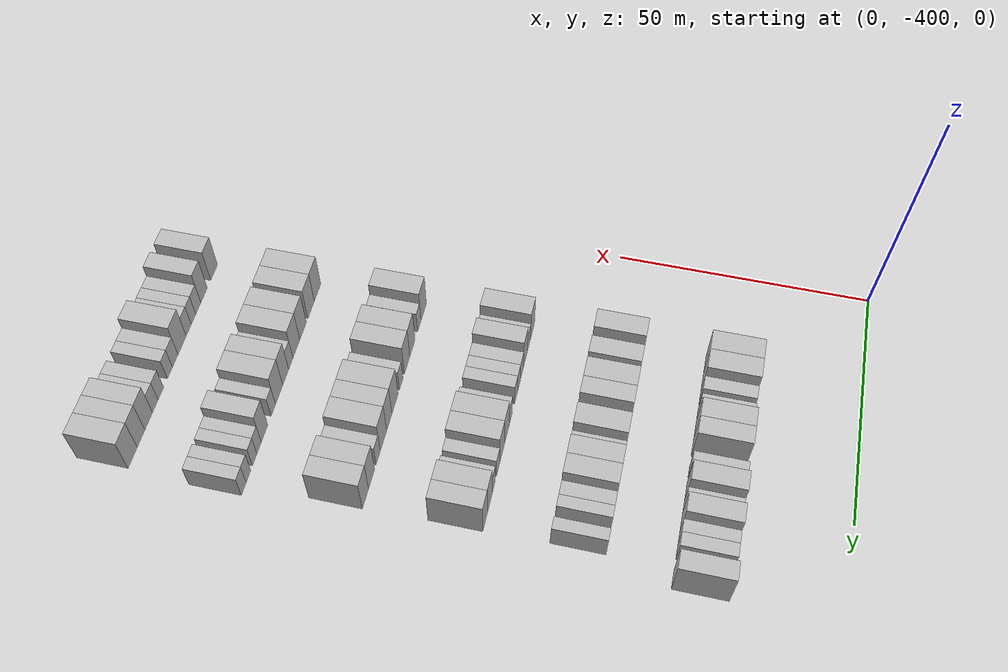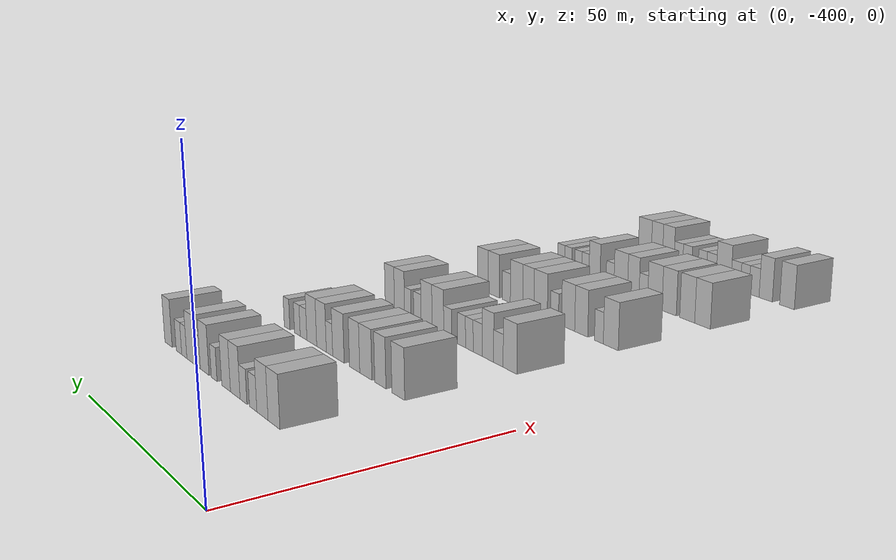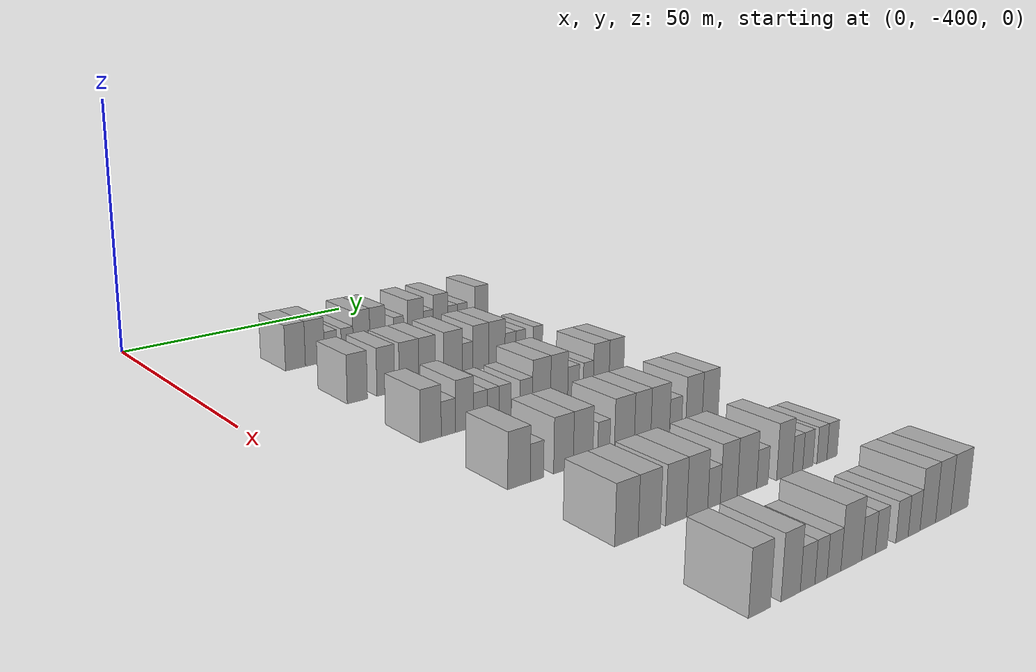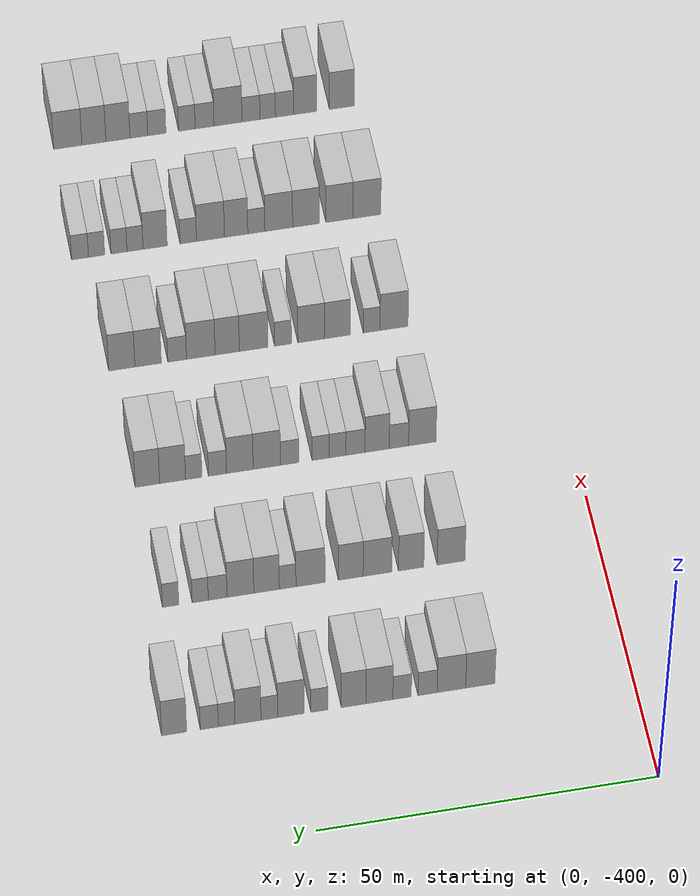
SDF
<sdf version="1.6">
 <world name="default">
  <model name="building_1">
   <static>1</static>
   <pose>25.0000 -377.8522 0 0.000000 0.000000 0.000000</pose>
   <link name="link">
    <pose>0 0 4.50 0 0 0</pose>
    <collision name="collision"><geometry><box><size>10.0000 4.2957 9.0000</size></box></geometry></collision>
    <visual name="visual">
     <cast_shadows>0</cast_shadows>
     <geometry><box><size>10.0000 4.2957 9.0000</size></box></geometry>
     <material>
      <script>
       <uri>model://HANNAS_wall/materials/scripts</uri>
       <uri>model://HANNAS_wall/materials/textures</uri>
       <name>vrc/HANNAS_wall</name>
      </script>
     </material>
    </visual>
   </link>
  </model>
  <model name="building_2">
   <static>1</static>
   <pose>25.0000 -373.5972 0 0.000000 0.000000 0.000000</pose>
   <link name="link">
    <pose>0 0 4.50 0 0 0</pose>
    <collision name="collision"><geometry><box><size>10.0000 4.2143 9.0000</size></box></geometry></collision>
    <visual name="visual">
     <cast_shadows>0</cast_shadows>
     <geometry><box><size>10.0000 4.2143 9.0000</size></box></geometry>
     <material>
      <script>
       <uri>model://HANNAS_wall/materials/scripts</uri>
       <uri>model://HANNAS_wall/materials/textures</uri>
       <name>vrc/HANNAS_wall</name>
      </script>
     </material>
    </visual>
   </link>
  </model>
  <model name="building_3">
   <static>1</static>
   <pose>25.0000 -370.0672 0 0.000000 0.000000 0.000000</pose>
   <link name="link">
    <pose>0 0 3.00 0 0 0</pose>
    <collision name="collision"><geometry><box><size>10.0000 2.8457 6.0000</size></box></geometry></collision>
    <visual name="visual">
     <cast_shadows>0</cast_shadows>
     <geometry><box><size>10.0000 2.8457 6.0000</size></box></geometry>
     <material>
      <script>
       <uri>model://HANNAS_wall/materials/scripts</uri>
       <uri>model://HANNAS_wall/materials/textures</uri>
       <name>vrc/HANNAS_wall</name>
      </script>
     </material>
    </visual>
   </link>
  </model>
  <model name="building_4">
   <static>1</static>
   <pose>25.0000 -366.2848 0 0.000000 0.000000 0.000000</pose>
   <link name="link">
    <pose>0 0 3.00 0 0 0</pose>
    <collision name="collision"><geometry><box><size>10.0000 2.7192 6.0000</size></box></geometry></collision>
    <visual name="visual">
     <cast_shadows>0</cast_shadows>
     <geometry><box><size>10.0000 2.7192 6.0000</size></box></geometry>
     <material>
      <script>
       <uri>model://HANNAS_wall/materials/scripts</uri>
       <uri>model://HANNAS_wall/materials/textures</uri>
       <name>vrc/HANNAS_wall</name>
      </script>
     </material>
    </visual>
   </link>
  </model>
  <model name="building_5">
   <static>1</static>
   <pose>25.0000 -362.9691 0 0.000000 0.000000 0.000000</pose>
   <link name="link">
    <pose>0 0 4.50 0 0 0</pose>
    <collision name="collision"><geometry><box><size>10.0000 3.9122 9.0000</size></box></geometry></collision>
    <visual name="visual">
     <cast_shadows>0</cast_shadows>
     <geometry><box><size>10.0000 3.9122 9.0000</size></box></geometry>
     <material>
      <script>
       <uri>model://HANNAS_wall/materials/scripts</uri>
       <uri>model://HANNAS_wall/materials/textures</uri>
       <name>vrc/HANNAS_wall</name>
      </script>
     </material>
    </visual>
   </link>
  </model>
  <model name="building_6">
   <static>1</static>
   <pose>25.0000 -359.1819 0 0.000000 0.000000 0.000000</pose>
   <link name="link">
    <pose>0 0 4.50 0 0 0</pose>
    <collision name="collision"><geometry><box><size>10.0000 3.6622 9.0000</size></box></geometry></collision>
    <visual name="visual">
     <cast_shadows>0</cast_shadows>
     <geometry><box><size>10.0000 3.6622 9.0000</size></box></geometry>
     <material>
      <script>
       <uri>model://HANNAS_wall/materials/scripts</uri>
       <uri>model://HANNAS_wall/materials/textures</uri>
       <name>vrc/HANNAS_wall</name>
      </script>
     </material>
    </visual>
   </link>
  </model>
  <model name="building_7">
   <static>1</static>
   <pose>25.0000 -354.1123 0 0.000000 0.000000 0.000000</pose>
   <link name="link">
    <pose>0 0 3.00 0 0 0</pose>
    <collision name="collision"><geometry><box><size>10.0000 2.4771 6.0000</size></box></geometry></collision>
    <visual name="visual">
     <cast_shadows>0</cast_shadows>
     <geometry><box><size>10.0000 2.4771 6.0000</size></box></geometry>
     <material>
      <script>
       <uri>model://HANNAS_wall/materials/scripts</uri>
       <uri>model://HANNAS_wall/materials/textures</uri>
       <name>vrc/HANNAS_wall</name>
      </script>
     </material>
    </visual>
   </link>
  </model>
  <model name="building_8">
   <static>1</static>
   <pose>25.0000 -349.9344 0 0.000000 0.000000 0.000000</pose>
   <link name="link">
    <pose>0 0 4.50 0 0 0</pose>
    <collision name="collision"><geometry><box><size>10.0000 3.8786 9.0000</size></box></geometry></collision>
    <visual name="visual">
     <cast_shadows>0</cast_shadows>
     <geometry><box><size>10.0000 3.8786 9.0000</size></box></geometry>
     <material>
      <script>
       <uri>model://HANNAS_wall/materials/scripts</uri>
       <uri>model://HANNAS_wall/materials/textures</uri>
       <name>vrc/HANNAS_wall</name>
      </script>
     </material>
    </visual>
   </link>
  </model>
  <model name="building_9">
   <static>1</static>
   <pose>25.0000 -346.7708 0 0.000000 0.000000 0.000000</pose>
   <link name="link">
    <pose>0 0 3.00 0 0 0</pose>
    <collision name="collision"><geometry><box><size>10.0000 2.4484 6.0000</size></box></geometry></collision>
    <visual name="visual">
     <cast_shadows>0</cast_shadows>
     <geometry><box><size>10.0000 2.4484 6.0000</size></box></geometry>
     <material>
      <script>
       <uri>model://HANNAS_wall/materials/scripts</uri>
       <uri>model://HANNAS_wall/materials/textures</uri>
       <name>vrc/HANNAS_wall</name>
      </script>
     </material>
    </visual>
   </link>
  </model>
  <model name="building_10">
   <static>1</static>
   <pose>25.0000 -343.6423 0 0.000000 0.000000 0.000000</pose>
   <link name="link">
    <pose>0 0 4.50 0 0 0</pose>
    <collision name="collision"><geometry><box><size>10.0000 3.8088 9.0000</size></box></geometry></collision>
    <visual name="visual">
     <cast_shadows>0</cast_shadows>
     <geometry><box><size>10.0000 3.8088 9.0000</size></box></geometry>
     <material>
      <script>
       <uri>model://HANNAS_wall/materials/scripts</uri>
       <uri>model://HANNAS_wall/materials/textures</uri>
       <name>vrc/HANNAS_wall</name>
      </script>
     </material>
    </visual>
   </link>
  </model>
  <model name="building_11">
   <static>1</static>
   <pose>25.0000 -340.5171 0 0.000000 0.000000 0.000000</pose>
   <link name="link">
    <pose>0 0 3.00 0 0 0</pose>
    <collision name="collision"><geometry><box><size>10.0000 2.4416 6.0000</size></box></geometry></collision>
    <visual name="visual">
     <cast_shadows>0</cast_shadows>
     <geometry><box><size>10.0000 2.4416 6.0000</size></box></geometry>
     <material>
      <script>
       <uri>model://HANNAS_wall/materials/scripts</uri>
       <uri>model://HANNAS_wall/materials/textures</uri>
       <name>vrc/HANNAS_wall</name>
      </script>
     </material>
    </visual>
   </link>
  </model>
  <model name="building_12">
   <static>1</static>
   <pose>25.0000 -337.9712 0 0.000000 0.000000 0.000000</pose>
   <link name="link">
    <pose>0 0 3.00 0 0 0</pose>
    <collision name="collision"><geometry><box><size>10.0000 2.6502 6.0000</size></box></geometry></collision>
    <visual name="visual">
     <cast_shadows>0</cast_shadows>
     <geometry><box><size>10.0000 2.6502 6.0000</size></box></geometry>
     <material>
      <script>
       <uri>model://HANNAS_wall/materials/scripts</uri>
       <uri>model://HANNAS_wall/materials/textures</uri>
       <name>vrc/HANNAS_wall</name>
      </script>
     </material>
    </visual>
   </link>
  </model>
  <model name="building_13">
   <static>1</static>
   <pose>25.0000 -332.8174 0 0.000000 0.000000 0.000000</pose>
   <link name="link">
    <pose>0 0 4.50 0 0 0</pose>
    <collision name="collision"><geometry><box><size>10.0000 3.6573 9.0000</size></box></geometry></collision>
    <visual name="visual">
     <cast_shadows>0</cast_shadows>
     <geometry><box><size>10.0000 3.6573 9.0000</size></box></geometry>
     <material>
      <script>
       <uri>model://HANNAS_wall/materials/scripts</uri>
       <uri>model://HANNAS_wall/materials/textures</uri>
       <name>vrc/HANNAS_wall</name>
      </script>
     </material>
    </visual>
   </link>
  </model>
  <model name="building_199">
   <static>1</static>
   <pose>47.0000 -377.9114 0 0.000000 0.000000 0.000000</pose>
   <link name="link">
    <pose>0 0 4.50 0 0 0</pose>
    <collision name="collision"><geometry><box><size>10.0000 4.1772 9.0000</size></box></geometry></collision>
    <visual name="visual">
     <cast_shadows>0</cast_shadows>
     <geometry><box><size>10.0000 4.1772 9.0000</size></box></geometry>
     <material>
      <script>
       <uri>model://HANNAS_wall/materials/scripts</uri>
       <uri>model://HANNAS_wall/materials/textures</uri>
       <name>vrc/HANNAS_wall</name>
      </script>
     </material>
    </visual>
   </link>
  </model>
  <model name="building_200">
   <static>1</static>
   <pose>47.0000 -371.9223 0 0.000000 0.000000 0.000000</pose>
   <link name="link">
    <pose>0 0 4.50 0 0 0</pose>
    <collision name="collision"><geometry><box><size>10.0000 3.8009 9.0000</size></box></geometry></collision>
    <visual name="visual">
     <cast_shadows>0</cast_shadows>
     <geometry><box><size>10.0000 3.8009 9.0000</size></box></geometry>
     <material>
      <script>
       <uri>model://HANNAS_wall/materials/scripts</uri>
       <uri>model://HANNAS_wall/materials/textures</uri>
       <name>vrc/HANNAS_wall</name>
      </script>
     </material>
    </visual>
   </link>
  </model>
  <model name="building_201">
   <static>1</static>
   <pose>47.0000 -366.8746 0 0.000000 0.000000 0.000000</pose>
   <link name="link">
    <pose>0 0 4.50 0 0 0</pose>
    <collision name="collision"><geometry><box><size>10.0000 4.2946 9.0000</size></box></geometry></collision>
    <visual name="visual">
     <cast_shadows>0</cast_shadows>
     <geometry><box><size>10.0000 4.2946 9.0000</size></box></geometry>
     <material>
      <script>
       <uri>model://HANNAS_wall/materials/scripts</uri>
       <uri>model://HANNAS_wall/materials/textures</uri>
       <name>vrc/HANNAS_wall</name>
      </script>
     </material>
    </visual>
   </link>
  </model>
  <model name="building_202">
   <static>1</static>
   <pose>47.0000 -362.8698 0 0.000000 0.000000 0.000000</pose>
   <link name="link">
    <pose>0 0 4.50 0 0 0</pose>
    <collision name="collision"><geometry><box><size>10.0000 3.7150 9.0000</size></box></geometry></collision>
    <visual name="visual">
     <cast_shadows>0</cast_shadows>
     <geometry><box><size>10.0000 3.7150 9.0000</size></box></geometry>
     <material>
      <script>
       <uri>model://HANNAS_wall/materials/scripts</uri>
       <uri>model://HANNAS_wall/materials/textures</uri>
       <name>vrc/HANNAS_wall</name>
      </script>
     </material>
    </visual>
   </link>
  </model>
  <model name="building_203">
   <static>1</static>
   <pose>47.0000 -356.8426 0 0.000000 0.000000 0.000000</pose>
   <link name="link">
    <pose>0 0 4.50 0 0 0</pose>
    <collision name="collision"><geometry><box><size>10.0000 4.3393 9.0000</size></box></geometry></collision>
    <visual name="visual">
     <cast_shadows>0</cast_shadows>
     <geometry><box><size>10.0000 4.3393 9.0000</size></box></geometry>
     <material>
      <script>
       <uri>model://HANNAS_wall/materials/scripts</uri>
       <uri>model://HANNAS_wall/materials/textures</uri>
       <name>vrc/HANNAS_wall</name>
      </script>
     </material>
    </visual>
   </link>
  </model>
  <model name="building_204">
   <static>1</static>
   <pose>47.0000 -353.4351 0 0.000000 0.000000 0.000000</pose>
   <link name="link">
    <pose>0 0 3.00 0 0 0</pose>
    <collision name="collision"><geometry><box><size>10.0000 2.4756 6.0000</size></box></geometry></collision>
    <visual name="visual">
     <cast_shadows>0</cast_shadows>
     <geometry><box><size>10.0000 2.4756 6.0000</size></box></geometry>
     <material>
      <script>
       <uri>model://HANNAS_wall/materials/scripts</uri>
       <uri>model://HANNAS_wall/materials/textures</uri>
       <name>vrc/HANNAS_wall</name>
      </script>
     </material>
    </visual>
   </link>
  </model>
  <model name="building_205">
   <static>1</static>
   <pose>47.0000 -350.2912 0 0.000000 0.000000 0.000000</pose>
   <link name="link">
    <pose>0 0 4.50 0 0 0</pose>
    <collision name="collision"><geometry><box><size>10.0000 3.8123 9.0000</size></box></geometry></collision>
    <visual name="visual">
     <cast_shadows>0</cast_shadows>
     <geometry><box><size>10.0000 3.8123 9.0000</size></box></geometry>
     <material>
      <script>
       <uri>model://HANNAS_wall/materials/scripts</uri>
       <uri>model://HANNAS_wall/materials/textures</uri>
       <name>vrc/HANNAS_wall</name>
      </script>
     </material>
    </visual>
   </link>
  </model>
  <model name="building_206">
   <static>1</static>
   <pose>47.0000 -346.3857 0 0.000000 0.000000 0.000000</pose>
   <link name="link">
    <pose>0 0 4.50 0 0 0</pose>
    <collision name="collision"><geometry><box><size>10.0000 3.9989 9.0000</size></box></geometry></collision>
    <visual name="visual">
     <cast_shadows>0</cast_shadows>
     <geometry><box><size>10.0000 3.9989 9.0000</size></box></geometry>
     <material>
      <script>
       <uri>model://HANNAS_wall/materials/scripts</uri>
       <uri>model://HANNAS_wall/materials/textures</uri>
       <name>vrc/HANNAS_wall</name>
      </script>
     </material>
    </visual>
   </link>
  </model>
  <model name="building_207">
   <static>1</static>
   <pose>47.0000 -342.9973 0 0.000000 0.000000 0.000000</pose>
   <link name="link">
    <pose>0 0 3.00 0 0 0</pose>
    <collision name="collision"><geometry><box><size>10.0000 2.7778 6.0000</size></box></geometry></collision>
    <visual name="visual">
     <cast_shadows>0</cast_shadows>
     <geometry><box><size>10.0000 2.7778 6.0000</size></box></geometry>
     <material>
      <script>
       <uri>model://HANNAS_wall/materials/scripts</uri>
       <uri>model://HANNAS_wall/materials/textures</uri>
       <name>vrc/HANNAS_wall</name>
      </script>
     </material>
    </visual>
   </link>
  </model>
  <model name="building_208">
   <static>1</static>
   <pose>47.0000 -340.4082 0 0.000000 0.000000 0.000000</pose>
   <link name="link">
    <pose>0 0 3.00 0 0 0</pose>
    <collision name="collision"><geometry><box><size>10.0000 2.4003 6.0000</size></box></geometry></collision>
    <visual name="visual">
     <cast_shadows>0</cast_shadows>
     <geometry><box><size>10.0000 2.4003 6.0000</size></box></geometry>
     <material>
      <script>
       <uri>model://HANNAS_wall/materials/scripts</uri>
       <uri>model://HANNAS_wall/materials/textures</uri>
       <name>vrc/HANNAS_wall</name>
      </script>
     </material>
    </visual>
   </link>
  </model>
  <model name="building_209">
   <static>1</static>
   <pose>47.0000 -335.9993 0 0.000000 0.000000 0.000000</pose>
   <link name="link">
    <pose>0 0 3.00 0 0 0</pose>
    <collision name="collision"><geometry><box><size>10.0000 2.4177 6.0000</size></box></geometry></collision>
    <visual name="visual">
     <cast_shadows>0</cast_shadows>
     <geometry><box><size>10.0000 2.4177 6.0000</size></box></geometry>
     <material>
      <script>
       <uri>model://HANNAS_wall/materials/scripts</uri>
       <uri>model://HANNAS_wall/materials/textures</uri>
       <name>vrc/HANNAS_wall</name>
      </script>
     </material>
    </visual>
   </link>
  </model>
  <model name="building_384">
   <static>1</static>
   <pose>69.0000 -377.9068 0 0.000000 0.000000 0.000000</pose>
   <link name="link">
    <pose>0 0 4.50 0 0 0</pose>
    <collision name="collision"><geometry><box><size>10.0000 4.1865 9.0000</size></box></geometry></collision>
    <visual name="visual">
     <cast_shadows>0</cast_shadows>
     <geometry><box><size>10.0000 4.1865 9.0000</size></box></geometry>
     <material>
      <script>
       <uri>model://HANNAS_wall/materials/scripts</uri>
       <uri>model://HANNAS_wall/materials/textures</uri>
       <name>vrc/HANNAS_wall</name>
      </script>
     </material>
    </visual>
   </link>
  </model>
  <model name="building_385">
   <static>1</static>
   <pose>69.0000 -374.3466 0 0.000000 0.000000 0.000000</pose>
   <link name="link">
    <pose>0 0 3.00 0 0 0</pose>
    <collision name="collision"><geometry><box><size>10.0000 2.9340 6.0000</size></box></geometry></collision>
    <visual name="visual">
     <cast_shadows>0</cast_shadows>
     <geometry><box><size>10.0000 2.9340 6.0000</size></box></geometry>
     <material>
      <script>
       <uri>model://HANNAS_wall/materials/scripts</uri>
       <uri>model://HANNAS_wall/materials/textures</uri>
       <name>vrc/HANNAS_wall</name>
      </script>
     </material>
    </visual>
   </link>
  </model>
  <model name="building_386">
   <static>1</static>
   <pose>69.0000 -371.0296 0 0.000000 0.000000 0.000000</pose>
   <link name="link">
    <pose>0 0 4.50 0 0 0</pose>
    <collision name="collision"><geometry><box><size>10.0000 3.7000 9.0000</size></box></geometry></collision>
    <visual name="visual">
     <cast_shadows>0</cast_shadows>
     <geometry><box><size>10.0000 3.7000 9.0000</size></box></geometry>
     <material>
      <script>
       <uri>model://HANNAS_wall/materials/scripts</uri>
       <uri>model://HANNAS_wall/materials/textures</uri>
       <name>vrc/HANNAS_wall</name>
      </script>
     </material>
    </visual>
   </link>
  </model>
  <model name="building_387">
   <static>1</static>
   <pose>69.0000 -367.7300 0 0.000000 0.000000 0.000000</pose>
   <link name="link">
    <pose>0 0 3.00 0 0 0</pose>
    <collision name="collision"><geometry><box><size>10.0000 2.8991 6.0000</size></box></geometry></collision>
    <visual name="visual">
     <cast_shadows>0</cast_shadows>
     <geometry><box><size>10.0000 2.8991 6.0000</size></box></geometry>
     <material>
      <script>
       <uri>model://HANNAS_wall/materials/scripts</uri>
       <uri>model://HANNAS_wall/materials/textures</uri>
       <name>vrc/HANNAS_wall</name>
      </script>
     </material>
    </visual>
   </link>
  </model>
  <model name="building_388">
   <static>1</static>
   <pose>69.0000 -365.0140 0 0.000000 0.000000 0.000000</pose>
   <link name="link">
    <pose>0 0 3.00 0 0 0</pose>
    <collision name="collision"><geometry><box><size>10.0000 2.5328 6.0000</size></box></geometry></collision>
    <visual name="visual">
     <cast_shadows>0</cast_shadows>
     <geometry><box><size>10.0000 2.5328 6.0000</size></box></geometry>
     <material>
      <script>
       <uri>model://HANNAS_wall/materials/scripts</uri>
       <uri>model://HANNAS_wall/materials/textures</uri>
       <name>vrc/HANNAS_wall</name>
      </script>
     </material>
    </visual>
   </link>
  </model>
  <model name="building_389">
   <static>1</static>
   <pose>69.0000 -362.4386 0 0.000000 0.000000 0.000000</pose>
   <link name="link">
    <pose>0 0 3.00 0 0 0</pose>
    <collision name="collision"><geometry><box><size>10.0000 2.6179 6.0000</size></box></geometry></collision>
    <visual name="visual">
     <cast_shadows>0</cast_shadows>
     <geometry><box><size>10.0000 2.6179 6.0000</size></box></geometry>
     <material>
      <script>
       <uri>model://HANNAS_wall/materials/scripts</uri>
       <uri>model://HANNAS_wall/materials/textures</uri>
       <name>vrc/HANNAS_wall</name>
      </script>
     </material>
    </visual>
   </link>
  </model>
  <model name="building_390">
   <static>1</static>
   <pose>69.0000 -357.7257 0 0.000000 0.000000 0.000000</pose>
   <link name="link">
    <pose>0 0 3.00 0 0 0</pose>
    <collision name="collision"><geometry><box><size>10.0000 2.8081 6.0000</size></box></geometry></collision>
    <visual name="visual">
     <cast_shadows>0</cast_shadows>
     <geometry><box><size>10.0000 2.8081 6.0000</size></box></geometry>
     <material>
      <script>
       <uri>model://HANNAS_wall/materials/scripts</uri>
       <uri>model://HANNAS_wall/materials/textures</uri>
       <name>vrc/HANNAS_wall</name>
      </script>
     </material>
    </visual>
   </link>
  </model>
  <model name="building_391">
   <static>1</static>
   <pose>69.0000 -354.2533 0 0.000000 0.000000 0.000000</pose>
   <link name="link">
    <pose>0 0 4.50 0 0 0</pose>
    <collision name="collision"><geometry><box><size>10.0000 4.1367 9.0000</size></box></geometry></collision>
    <visual name="visual">
     <cast_shadows>0</cast_shadows>
     <geometry><box><size>10.0000 4.1367 9.0000</size></box></geometry>
     <material>
      <script>
       <uri>model://HANNAS_wall/materials/scripts</uri>
       <uri>model://HANNAS_wall/materials/textures</uri>
       <name>vrc/HANNAS_wall</name>
      </script>
     </material>
    </visual>
   </link>
  </model>
  <model name="building_392">
   <static>1</static>
   <pose>69.0000 -350.1700 0 0.000000 0.000000 0.000000</pose>
   <link name="link">
    <pose>0 0 4.50 0 0 0</pose>
    <collision name="collision"><geometry><box><size>10.0000 4.0300 9.0000</size></box></geometry></collision>
    <visual name="visual">
     <cast_shadows>0</cast_shadows>
     <geometry><box><size>10.0000 4.0300 9.0000</size></box></geometry>
     <material>
      <script>
       <uri>model://HANNAS_wall/materials/scripts</uri>
       <uri>model://HANNAS_wall/materials/textures</uri>
       <name>vrc/HANNAS_wall</name>
      </script>
     </material>
    </visual>
   </link>
  </model>
  <model name="building_393">
   <static>1</static>
   <pose>69.0000 -346.7906 0 0.000000 0.000000 0.000000</pose>
   <link name="link">
    <pose>0 0 3.00 0 0 0</pose>
    <collision name="collision"><geometry><box><size>10.0000 2.7288 6.0000</size></box></geometry></collision>
    <visual name="visual">
     <cast_shadows>0</cast_shadows>
     <geometry><box><size>10.0000 2.7288 6.0000</size></box></geometry>
     <material>
      <script>
       <uri>model://HANNAS_wall/materials/scripts</uri>
       <uri>model://HANNAS_wall/materials/textures</uri>
       <name>vrc/HANNAS_wall</name>
      </script>
     </material>
    </visual>
   </link>
  </model>
  <model name="building_394">
   <static>1</static>
   <pose>69.0000 -343.1897 0 0.000000 0.000000 0.000000</pose>
   <link name="link">
    <pose>0 0 3.00 0 0 0</pose>
    <collision name="collision"><geometry><box><size>10.0000 2.4729 6.0000</size></box></geometry></collision>
    <visual name="visual">
     <cast_shadows>0</cast_shadows>
     <geometry><box><size>10.0000 2.4729 6.0000</size></box></geometry>
     <material>
      <script>
       <uri>model://HANNAS_wall/materials/scripts</uri>
       <uri>model://HANNAS_wall/materials/textures</uri>
       <name>vrc/HANNAS_wall</name>
      </script>
     </material>
    </visual>
   </link>
  </model>
  <model name="building_395">
   <static>1</static>
   <pose>69.0000 -339.9954 0 0.000000 0.000000 0.000000</pose>
   <link name="link">
    <pose>0 0 4.50 0 0 0</pose>
    <collision name="collision"><geometry><box><size>10.0000 3.9157 9.0000</size></box></geometry></collision>
    <visual name="visual">
     <cast_shadows>0</cast_shadows>
     <geometry><box><size>10.0000 3.9157 9.0000</size></box></geometry>
     <material>
      <script>
       <uri>model://HANNAS_wall/materials/scripts</uri>
       <uri>model://HANNAS_wall/materials/textures</uri>
       <name>vrc/HANNAS_wall</name>
      </script>
     </material>
    </visual>
   </link>
  </model>
  <model name="building_396">
   <static>1</static>
   <pose>69.0000 -336.1928 0 0.000000 0.000000 0.000000</pose>
   <link name="link">
    <pose>0 0 4.50 0 0 0</pose>
    <collision name="collision"><geometry><box><size>10.0000 3.6896 9.0000</size></box></geometry></collision>
    <visual name="visual">
     <cast_shadows>0</cast_shadows>
     <geometry><box><size>10.0000 3.6896 9.0000</size></box></geometry>
     <material>
      <script>
       <uri>model://HANNAS_wall/materials/scripts</uri>
       <uri>model://HANNAS_wall/materials/textures</uri>
       <name>vrc/HANNAS_wall</name>
      </script>
     </material>
    </visual>
   </link>
  </model>
  <model name="building_573">
   <static>1</static>
   <pose>91.0000 -377.8401 0 0.000000 0.000000 0.000000</pose>
   <link name="link">
    <pose>0 0 4.50 0 0 0</pose>
    <collision name="collision"><geometry><box><size>10.0000 4.3199 9.0000</size></box></geometry></collision>
    <visual name="visual">
     <cast_shadows>0</cast_shadows>
     <geometry><box><size>10.0000 4.3199 9.0000</size></box></geometry>
     <material>
      <script>
       <uri>model://HANNAS_wall/materials/scripts</uri>
       <uri>model://HANNAS_wall/materials/textures</uri>
       <name>vrc/HANNAS_wall</name>
      </script>
     </material>
    </visual>
   </link>
  </model>
  <model name="building_574">
   <static>1</static>
   <pose>91.0000 -374.3766 0 0.000000 0.000000 0.000000</pose>
   <link name="link">
    <pose>0 0 3.00 0 0 0</pose>
    <collision name="collision"><geometry><box><size>10.0000 2.6071 6.0000</size></box></geometry></collision>
    <visual name="visual">
     <cast_shadows>0</cast_shadows>
     <geometry><box><size>10.0000 2.6071 6.0000</size></box></geometry>
     <material>
      <script>
       <uri>model://HANNAS_wall/materials/scripts</uri>
       <uri>model://HANNAS_wall/materials/textures</uri>
       <name>vrc/HANNAS_wall</name>
      </script>
     </material>
    </visual>
   </link>
  </model>
  <model name="building_575">
   <static>1</static>
   <pose>91.0000 -369.0781 0 0.000000 0.000000 0.000000</pose>
   <link name="link">
    <pose>0 0 4.50 0 0 0</pose>
    <collision name="collision"><geometry><box><size>10.0000 3.9899 9.0000</size></box></geometry></collision>
    <visual name="visual">
     <cast_shadows>0</cast_shadows>
     <geometry><box><size>10.0000 3.9899 9.0000</size></box></geometry>
     <material>
      <script>
       <uri>model://HANNAS_wall/materials/scripts</uri>
       <uri>model://HANNAS_wall/materials/textures</uri>
       <name>vrc/HANNAS_wall</name>
      </script>
     </material>
    </visual>
   </link>
  </model>
  <model name="building_576">
   <static>1</static>
   <pose>91.0000 -365.0295 0 0.000000 0.000000 0.000000</pose>
   <link name="link">
    <pose>0 0 4.50 0 0 0</pose>
    <collision name="collision"><geometry><box><size>10.0000 4.1073 9.0000</size></box></geometry></collision>
    <visual name="visual">
     <cast_shadows>0</cast_shadows>
     <geometry><box><size>10.0000 4.1073 9.0000</size></box></geometry>
     <material>
      <script>
       <uri>model://HANNAS_wall/materials/scripts</uri>
       <uri>model://HANNAS_wall/materials/textures</uri>
       <name>vrc/HANNAS_wall</name>
      </script>
     </material>
    </visual>
   </link>
  </model>
  <model name="building_577">
   <static>1</static>
   <pose>91.0000 -360.6774 0 0.000000 0.000000 0.000000</pose>
   <link name="link">
    <pose>0 0 3.00 0 0 0</pose>
    <collision name="collision"><geometry><box><size>10.0000 2.5969 6.0000</size></box></geometry></collision>
    <visual name="visual">
     <cast_shadows>0</cast_shadows>
     <geometry><box><size>10.0000 2.5969 6.0000</size></box></geometry>
     <material>
      <script>
       <uri>model://HANNAS_wall/materials/scripts</uri>
       <uri>model://HANNAS_wall/materials/textures</uri>
       <name>vrc/HANNAS_wall</name>
      </script>
     </material>
    </visual>
   </link>
  </model>
  <model name="building_578">
   <static>1</static>
   <pose>91.0000 -356.1742 0 0.000000 0.000000 0.000000</pose>
   <link name="link">
    <pose>0 0 4.50 0 0 0</pose>
    <collision name="collision"><geometry><box><size>10.0000 4.4096 9.0000</size></box></geometry></collision>
    <visual name="visual">
     <cast_shadows>0</cast_shadows>
     <geometry><box><size>10.0000 4.4096 9.0000</size></box></geometry>
     <material>
      <script>
       <uri>model://HANNAS_wall/materials/scripts</uri>
       <uri>model://HANNAS_wall/materials/textures</uri>
       <name>vrc/HANNAS_wall</name>
      </script>
     </material>
    </visual>
   </link>
  </model>
  <model name="building_579">
   <static>1</static>
   <pose>91.0000 -352.0953 0 0.000000 0.000000 0.000000</pose>
   <link name="link">
    <pose>0 0 4.50 0 0 0</pose>
    <collision name="collision"><geometry><box><size>10.0000 3.7480 9.0000</size></box></geometry></collision>
    <visual name="visual">
     <cast_shadows>0</cast_shadows>
     <geometry><box><size>10.0000 3.7480 9.0000</size></box></geometry>
     <material>
      <script>
       <uri>model://HANNAS_wall/materials/scripts</uri>
       <uri>model://HANNAS_wall/materials/textures</uri>
       <name>vrc/HANNAS_wall</name>
      </script>
     </material>
    </visual>
   </link>
  </model>
  <model name="building_580">
   <static>1</static>
   <pose>91.0000 -348.0289 0 0.000000 0.000000 0.000000</pose>
   <link name="link">
    <pose>0 0 4.50 0 0 0</pose>
    <collision name="collision"><geometry><box><size>10.0000 4.3849 9.0000</size></box></geometry></collision>
    <visual name="visual">
     <cast_shadows>0</cast_shadows>
     <geometry><box><size>10.0000 4.3849 9.0000</size></box></geometry>
     <material>
      <script>
       <uri>model://HANNAS_wall/materials/scripts</uri>
       <uri>model://HANNAS_wall/materials/textures</uri>
       <name>vrc/HANNAS_wall</name>
      </script>
     </material>
    </visual>
   </link>
  </model>
  <model name="building_581">
   <static>1</static>
   <pose>91.0000 -344.4009 0 0.000000 0.000000 0.000000</pose>
   <link name="link">
    <pose>0 0 3.00 0 0 0</pose>
    <collision name="collision"><geometry><box><size>10.0000 2.8711 6.0000</size></box></geometry></collision>
    <visual name="visual">
     <cast_shadows>0</cast_shadows>
     <geometry><box><size>10.0000 2.8711 6.0000</size></box></geometry>
     <material>
      <script>
       <uri>model://HANNAS_wall/materials/scripts</uri>
       <uri>model://HANNAS_wall/materials/textures</uri>
       <name>vrc/HANNAS_wall</name>
      </script>
     </material>
    </visual>
   </link>
  </model>
  <model name="building_582">
   <static>1</static>
   <pose>91.0000 -339.9455 0 0.000000 0.000000 0.000000</pose>
   <link name="link">
    <pose>0 0 4.50 0 0 0</pose>
    <collision name="collision"><geometry><box><size>10.0000 4.0396 9.0000</size></box></geometry></collision>
    <visual name="visual">
     <cast_shadows>0</cast_shadows>
     <geometry><box><size>10.0000 4.0396 9.0000</size></box></geometry>
     <material>
      <script>
       <uri>model://HANNAS_wall/materials/scripts</uri>
       <uri>model://HANNAS_wall/materials/textures</uri>
       <name>vrc/HANNAS_wall</name>
      </script>
     </material>
    </visual>
   </link>
  </model>
  <model name="building_583">
   <static>1</static>
   <pose>91.0000 -335.9117 0 0.000000 0.000000 0.000000</pose>
   <link name="link">
    <pose>0 0 4.50 0 0 0</pose>
    <collision name="collision"><geometry><box><size>10.0000 4.0281 9.0000</size></box></geometry></collision>
    <visual name="visual">
     <cast_shadows>0</cast_shadows>
     <geometry><box><size>10.0000 4.0281 9.0000</size></box></geometry>
     <material>
      <script>
       <uri>model://HANNAS_wall/materials/scripts</uri>
       <uri>model://HANNAS_wall/materials/textures</uri>
       <name>vrc/HANNAS_wall</name>
      </script>
     </material>
    </visual>
   </link>
  </model>
  <model name="building_756">
   <static>1</static>
   <pose>113.0000 -377.8206 0 0.000000 0.000000 0.000000</pose>
   <link name="link">
    <pose>0 0 4.50 0 0 0</pose>
    <collision name="collision"><geometry><box><size>10.0000 4.3588 9.0000</size></box></geometry></collision>
    <visual name="visual">
     <cast_shadows>0</cast_shadows>
     <geometry><box><size>10.0000 4.3588 9.0000</size></box></geometry>
     <material>
      <script>
       <uri>model://HANNAS_wall/materials/scripts</uri>
       <uri>model://HANNAS_wall/materials/textures</uri>
       <name>vrc/HANNAS_wall</name>
      </script>
     </material>
    </visual>
   </link>
  </model>
  <model name="building_757">
   <static>1</static>
   <pose>113.0000 -373.5067 0 0.000000 0.000000 0.000000</pose>
   <link name="link">
    <pose>0 0 4.50 0 0 0</pose>
    <collision name="collision"><geometry><box><size>10.0000 4.2688 9.0000</size></box></geometry></collision>
    <visual name="visual">
     <cast_shadows>0</cast_shadows>
     <geometry><box><size>10.0000 4.2688 9.0000</size></box></geometry>
     <material>
      <script>
       <uri>model://HANNAS_wall/materials/scripts</uri>
       <uri>model://HANNAS_wall/materials/textures</uri>
       <name>vrc/HANNAS_wall</name>
      </script>
     </material>
    </visual>
   </link>
  </model>
  <model name="building_758">
   <static>1</static>
   <pose>113.0000 -368.2683 0 0.000000 0.000000 0.000000</pose>
   <link name="link">
    <pose>0 0 4.50 0 0 0</pose>
    <collision name="collision"><geometry><box><size>10.0000 4.2080 9.0000</size></box></geometry></collision>
    <visual name="visual">
     <cast_shadows>0</cast_shadows>
     <geometry><box><size>10.0000 4.2080 9.0000</size></box></geometry>
     <material>
      <script>
       <uri>model://HANNAS_wall/materials/scripts</uri>
       <uri>model://HANNAS_wall/materials/textures</uri>
       <name>vrc/HANNAS_wall</name>
      </script>
     </material>
    </visual>
   </link>
  </model>
  <model name="building_759">
   <static>1</static>
   <pose>113.0000 -363.9841 0 0.000000 0.000000 0.000000</pose>
   <link name="link">
    <pose>0 0 4.50 0 0 0</pose>
    <collision name="collision"><geometry><box><size>10.0000 4.3602 9.0000</size></box></geometry></collision>
    <visual name="visual">
     <cast_shadows>0</cast_shadows>
     <geometry><box><size>10.0000 4.3602 9.0000</size></box></geometry>
     <material>
      <script>
       <uri>model://HANNAS_wall/materials/scripts</uri>
       <uri>model://HANNAS_wall/materials/textures</uri>
       <name>vrc/HANNAS_wall</name>
      </script>
     </material>
    </visual>
   </link>
  </model>
  <model name="building_760">
   <static>1</static>
   <pose>113.0000 -360.4668 0 0.000000 0.000000 0.000000</pose>
   <link name="link">
    <pose>0 0 3.00 0 0 0</pose>
    <collision name="collision"><geometry><box><size>10.0000 2.6744 6.0000</size></box></geometry></collision>
    <visual name="visual">
     <cast_shadows>0</cast_shadows>
     <geometry><box><size>10.0000 2.6744 6.0000</size></box></geometry>
     <material>
      <script>
       <uri>model://HANNAS_wall/materials/scripts</uri>
       <uri>model://HANNAS_wall/materials/textures</uri>
       <name>vrc/HANNAS_wall</name>
      </script>
     </material>
    </visual>
   </link>
  </model>
  <model name="building_761">
   <static>1</static>
   <pose>113.0000 -357.3128 0 0.000000 0.000000 0.000000</pose>
   <link name="link">
    <pose>0 0 4.50 0 0 0</pose>
    <collision name="collision"><geometry><box><size>10.0000 3.6336 9.0000</size></box></geometry></collision>
    <visual name="visual">
     <cast_shadows>0</cast_shadows>
     <geometry><box><size>10.0000 3.6336 9.0000</size></box></geometry>
     <material>
      <script>
       <uri>model://HANNAS_wall/materials/scripts</uri>
       <uri>model://HANNAS_wall/materials/textures</uri>
       <name>vrc/HANNAS_wall</name>
      </script>
     </material>
    </visual>
   </link>
  </model>
  <model name="building_762">
   <static>1</static>
   <pose>113.0000 -353.3114 0 0.000000 0.000000 0.000000</pose>
   <link name="link">
    <pose>0 0 4.50 0 0 0</pose>
    <collision name="collision"><geometry><box><size>10.0000 4.3691 9.0000</size></box></geometry></collision>
    <visual name="visual">
     <cast_shadows>0</cast_shadows>
     <geometry><box><size>10.0000 4.3691 9.0000</size></box></geometry>
     <material>
      <script>
       <uri>model://HANNAS_wall/materials/scripts</uri>
       <uri>model://HANNAS_wall/materials/textures</uri>
       <name>vrc/HANNAS_wall</name>
      </script>
     </material>
    </visual>
   </link>
  </model>
  <model name="building_763">
   <static>1</static>
   <pose>113.0000 -349.8375 0 0.000000 0.000000 0.000000</pose>
   <link name="link">
    <pose>0 0 3.00 0 0 0</pose>
    <collision name="collision"><geometry><box><size>10.0000 2.5789 6.0000</size></box></geometry></collision>
    <visual name="visual">
     <cast_shadows>0</cast_shadows>
     <geometry><box><size>10.0000 2.5789 6.0000</size></box></geometry>
     <material>
      <script>
       <uri>model://HANNAS_wall/materials/scripts</uri>
       <uri>model://HANNAS_wall/materials/textures</uri>
       <name>vrc/HANNAS_wall</name>
      </script>
     </material>
    </visual>
   </link>
  </model>
  <model name="building_764">
   <static>1</static>
   <pose>113.0000 -344.6712 0 0.000000 0.000000 0.000000</pose>
   <link name="link">
    <pose>0 0 4.50 0 0 0</pose>
    <collision name="collision"><geometry><box><size>10.0000 3.7536 9.0000</size></box></geometry></collision>
    <visual name="visual">
     <cast_shadows>0</cast_shadows>
     <geometry><box><size>10.0000 3.7536 9.0000</size></box></geometry>
     <material>
      <script>
       <uri>model://HANNAS_wall/materials/scripts</uri>
       <uri>model://HANNAS_wall/materials/textures</uri>
       <name>vrc/HANNAS_wall</name>
      </script>
     </material>
    </visual>
   </link>
  </model>
  <model name="building_765">
   <static>1</static>
   <pose>113.0000 -341.5438 0 0.000000 0.000000 0.000000</pose>
   <link name="link">
    <pose>0 0 3.00 0 0 0</pose>
    <collision name="collision"><geometry><box><size>10.0000 2.5012 6.0000</size></box></geometry></collision>
    <visual name="visual">
     <cast_shadows>0</cast_shadows>
     <geometry><box><size>10.0000 2.5012 6.0000</size></box></geometry>
     <material>
      <script>
       <uri>model://HANNAS_wall/materials/scripts</uri>
       <uri>model://HANNAS_wall/materials/textures</uri>
       <name>vrc/HANNAS_wall</name>
      </script>
     </material>
    </visual>
   </link>
  </model>
  <model name="building_766">
   <static>1</static>
   <pose>113.0000 -339.0549 0 0.000000 0.000000 0.000000</pose>
   <link name="link">
    <pose>0 0 3.00 0 0 0</pose>
    <collision name="collision"><geometry><box><size>10.0000 2.4767 6.0000</size></box></geometry></collision>
    <visual name="visual">
     <cast_shadows>0</cast_shadows>
     <geometry><box><size>10.0000 2.4767 6.0000</size></box></geometry>
     <material>
      <script>
       <uri>model://HANNAS_wall/materials/scripts</uri>
       <uri>model://HANNAS_wall/materials/textures</uri>
       <name>vrc/HANNAS_wall</name>
      </script>
     </material>
    </visual>
   </link>
  </model>
  <model name="building_767">
   <static>1</static>
   <pose>113.0000 -335.5551 0 0.000000 0.000000 0.000000</pose>
   <link name="link">
    <pose>0 0 3.00 0 0 0</pose>
    <collision name="collision"><geometry><box><size>10.0000 2.5227 6.0000</size></box></geometry></collision>
    <visual name="visual">
     <cast_shadows>0</cast_shadows>
     <geometry><box><size>10.0000 2.5227 6.0000</size></box></geometry>
     <material>
      <script>
       <uri>model://HANNAS_wall/materials/scripts</uri>
       <uri>model://HANNAS_wall/materials/textures</uri>
       <name>vrc/HANNAS_wall</name>
      </script>
     </material>
    </visual>
   </link>
  </model>
  <model name="building_768">
   <static>1</static>
   <pose>113.0000 -332.9816 0 0.000000 0.000000 0.000000</pose>
   <link name="link">
    <pose>0 0 3.00 0 0 0</pose>
    <collision name="collision"><geometry><box><size>10.0000 2.6243 6.0000</size></box></geometry></collision>
    <visual name="visual">
     <cast_shadows>0</cast_shadows>
     <geometry><box><size>10.0000 2.6243 6.0000</size></box></geometry>
     <material>
      <script>
       <uri>model://HANNAS_wall/materials/scripts</uri>
       <uri>model://HANNAS_wall/materials/textures</uri>
       <name>vrc/HANNAS_wall</name>
      </script>
     </material>
    </visual>
   </link>
  </model>
  <model name="building_933">
   <static>1</static>
   <pose>135.0000 -378.0061 0 0.000000 0.000000 0.000000</pose>
   <link name="link">
    <pose>0 0 4.50 0 0 0</pose>
    <collision name="collision"><geometry><box><size>10.0000 3.9878 9.0000</size></box></geometry></collision>
    <visual name="visual">
     <cast_shadows>0</cast_shadows>
     <geometry><box><size>10.0000 3.9878 9.0000</size></box></geometry>
     <material>
      <script>
       <uri>model://HANNAS_wall/materials/scripts</uri>
       <uri>model://HANNAS_wall/materials/textures</uri>
       <name>vrc/HANNAS_wall</name>
      </script>
     </material>
    </visual>
   </link>
  </model>
  <model name="building_934">
   <static>1</static>
   <pose>135.0000 -372.1640 0 0.000000 0.000000 0.000000</pose>
   <link name="link">
    <pose>0 0 4.50 0 0 0</pose>
    <collision name="collision"><geometry><box><size>10.0000 3.6964 9.0000</size></box></geometry></collision>
    <visual name="visual">
     <cast_shadows>0</cast_shadows>
     <geometry><box><size>10.0000 3.6964 9.0000</size></box></geometry>
     <material>
      <script>
       <uri>model://HANNAS_wall/materials/scripts</uri>
       <uri>model://HANNAS_wall/materials/textures</uri>
       <name>vrc/HANNAS_wall</name>
      </script>
     </material>
    </visual>
   </link>
  </model>
  <model name="building_935">
   <static>1</static>
   <pose>135.0000 -368.8646 0 0.000000 0.000000 0.000000</pose>
   <link name="link">
    <pose>0 0 3.00 0 0 0</pose>
    <collision name="collision"><geometry><box><size>10.0000 2.9024 6.0000</size></box></geometry></collision>
    <visual name="visual">
     <cast_shadows>0</cast_shadows>
     <geometry><box><size>10.0000 2.9024 6.0000</size></box></geometry>
     <material>
      <script>
       <uri>model://HANNAS_wall/materials/scripts</uri>
       <uri>model://HANNAS_wall/materials/textures</uri>
       <name>vrc/HANNAS_wall</name>
      </script>
     </material>
    </visual>
   </link>
  </model>
  <model name="building_936">
   <static>1</static>
   <pose>135.0000 -366.1782 0 0.000000 0.000000 0.000000</pose>
   <link name="link">
    <pose>0 0 3.00 0 0 0</pose>
    <collision name="collision"><geometry><box><size>10.0000 2.4704 6.0000</size></box></geometry></collision>
    <visual name="visual">
     <cast_shadows>0</cast_shadows>
     <geometry><box><size>10.0000 2.4704 6.0000</size></box></geometry>
     <material>
      <script>
       <uri>model://HANNAS_wall/materials/scripts</uri>
       <uri>model://HANNAS_wall/materials/textures</uri>
       <name>vrc/HANNAS_wall</name>
      </script>
     </material>
    </visual>
   </link>
  </model>
  <model name="building_937">
   <static>1</static>
   <pose>135.0000 -363.5271 0 0.000000 0.000000 0.000000</pose>
   <link name="link">
    <pose>0 0 3.00 0 0 0</pose>
    <collision name="collision"><geometry><box><size>10.0000 2.8318 6.0000</size></box></geometry></collision>
    <visual name="visual">
     <cast_shadows>0</cast_shadows>
     <geometry><box><size>10.0000 2.8318 6.0000</size></box></geometry>
     <material>
      <script>
       <uri>model://HANNAS_wall/materials/scripts</uri>
       <uri>model://HANNAS_wall/materials/textures</uri>
       <name>vrc/HANNAS_wall</name>
      </script>
     </material>
    </visual>
   </link>
  </model>
  <model name="building_938">
   <static>1</static>
   <pose>135.0000 -359.8876 0 0.000000 0.000000 0.000000</pose>
   <link name="link">
    <pose>0 0 4.50 0 0 0</pose>
    <collision name="collision"><geometry><box><size>10.0000 4.4473 9.0000</size></box></geometry></collision>
    <visual name="visual">
     <cast_shadows>0</cast_shadows>
     <geometry><box><size>10.0000 4.4473 9.0000</size></box></geometry>
     <material>
      <script>
       <uri>model://HANNAS_wall/materials/scripts</uri>
       <uri>model://HANNAS_wall/materials/textures</uri>
       <name>vrc/HANNAS_wall</name>
      </script>
     </material>
    </visual>
   </link>
  </model>
  <model name="building_939">
   <static>1</static>
   <pose>135.0000 -356.1703 0 0.000000 0.000000 0.000000</pose>
   <link name="link">
    <pose>0 0 3.00 0 0 0</pose>
    <collision name="collision"><geometry><box><size>10.0000 2.9872 6.0000</size></box></geometry></collision>
    <visual name="visual">
     <cast_shadows>0</cast_shadows>
     <geometry><box><size>10.0000 2.9872 6.0000</size></box></geometry>
     <material>
      <script>
       <uri>model://HANNAS_wall/materials/scripts</uri>
       <uri>model://HANNAS_wall/materials/textures</uri>
       <name>vrc/HANNAS_wall</name>
      </script>
     </material>
    </visual>
   </link>
  </model>
  <model name="building_940">
   <static>1</static>
   <pose>135.0000 -353.3599 0 0.000000 0.000000 0.000000</pose>
   <link name="link">
    <pose>0 0 3.00 0 0 0</pose>
    <collision name="collision"><geometry><box><size>10.0000 2.6337 6.0000</size></box></geometry></collision>
    <visual name="visual">
     <cast_shadows>0</cast_shadows>
     <geometry><box><size>10.0000 2.6337 6.0000</size></box></geometry>
     <material>
      <script>
       <uri>model://HANNAS_wall/materials/scripts</uri>
       <uri>model://HANNAS_wall/materials/textures</uri>
       <name>vrc/HANNAS_wall</name>
      </script>
     </material>
    </visual>
   </link>
  </model>
  <model name="building_941">
   <static>1</static>
   <pose>135.0000 -348.6121 0 0.000000 0.000000 0.000000</pose>
   <link name="link">
    <pose>0 0 3.00 0 0 0</pose>
    <collision name="collision"><geometry><box><size>10.0000 2.8618 6.0000</size></box></geometry></collision>
    <visual name="visual">
     <cast_shadows>0</cast_shadows>
     <geometry><box><size>10.0000 2.8618 6.0000</size></box></geometry>
     <material>
      <script>
       <uri>model://HANNAS_wall/materials/scripts</uri>
       <uri>model://HANNAS_wall/materials/textures</uri>
       <name>vrc/HANNAS_wall</name>
      </script>
     </material>
    </visual>
   </link>
  </model>
  <model name="building_942">
   <static>1</static>
   <pose>135.0000 -345.7648 0 0.000000 0.000000 0.000000</pose>
   <link name="link">
    <pose>0 0 3.00 0 0 0</pose>
    <collision name="collision"><geometry><box><size>10.0000 2.8327 6.0000</size></box></geometry></collision>
    <visual name="visual">
     <cast_shadows>0</cast_shadows>
     <geometry><box><size>10.0000 2.8327 6.0000</size></box></geometry>
     <material>
      <script>
       <uri>model://HANNAS_wall/materials/scripts</uri>
       <uri>model://HANNAS_wall/materials/textures</uri>
       <name>vrc/HANNAS_wall</name>
      </script>
     </material>
    </visual>
   </link>
  </model>
  <model name="building_943">
   <static>1</static>
   <pose>135.0000 -342.4502 0 0.000000 0.000000 0.000000</pose>
   <link name="link">
    <pose>0 0 4.50 0 0 0</pose>
    <collision name="collision"><geometry><box><size>10.0000 3.7965 9.0000</size></box></geometry></collision>
    <visual name="visual">
     <cast_shadows>0</cast_shadows>
     <geometry><box><size>10.0000 3.7965 9.0000</size></box></geometry>
     <material>
      <script>
       <uri>model://HANNAS_wall/materials/scripts</uri>
       <uri>model://HANNAS_wall/materials/textures</uri>
       <name>vrc/HANNAS_wall</name>
      </script>
     </material>
    </visual>
   </link>
  </model>
  <model name="building_944">
   <static>1</static>
   <pose>135.0000 -338.6566 0 0.000000 0.000000 0.000000</pose>
   <link name="link">
    <pose>0 0 4.50 0 0 0</pose>
    <collision name="collision"><geometry><box><size>10.0000 3.7906 9.0000</size></box></geometry></collision>
    <visual name="visual">
     <cast_shadows>0</cast_shadows>
     <geometry><box><size>10.0000 3.7906 9.0000</size></box></geometry>
     <material>
      <script>
       <uri>model://HANNAS_wall/materials/scripts</uri>
       <uri>model://HANNAS_wall/materials/textures</uri>
       <name>vrc/HANNAS_wall</name>
      </script>
     </material>
    </visual>
   </link>
  </model>
  <model name="building_945">
   <static>1</static>
   <pose>135.0000 -334.5351 0 0.000000 0.000000 0.000000</pose>
   <link name="link">
    <pose>0 0 4.50 0 0 0</pose>
    <collision name="collision"><geometry><box><size>10.0000 4.4526 9.0000</size></box></geometry></collision>
    <visual name="visual">
     <cast_shadows>0</cast_shadows>
     <geometry><box><size>10.0000 4.4526 9.0000</size></box></geometry>
     <material>
      <script>
       <uri>model://HANNAS_wall/materials/scripts</uri>
       <uri>model://HANNAS_wall/materials/textures</uri>
       <name>vrc/HANNAS_wall</name>
      </script>
     </material>
    </visual>
   </link>
  </model>
 </world>
</sdf>
